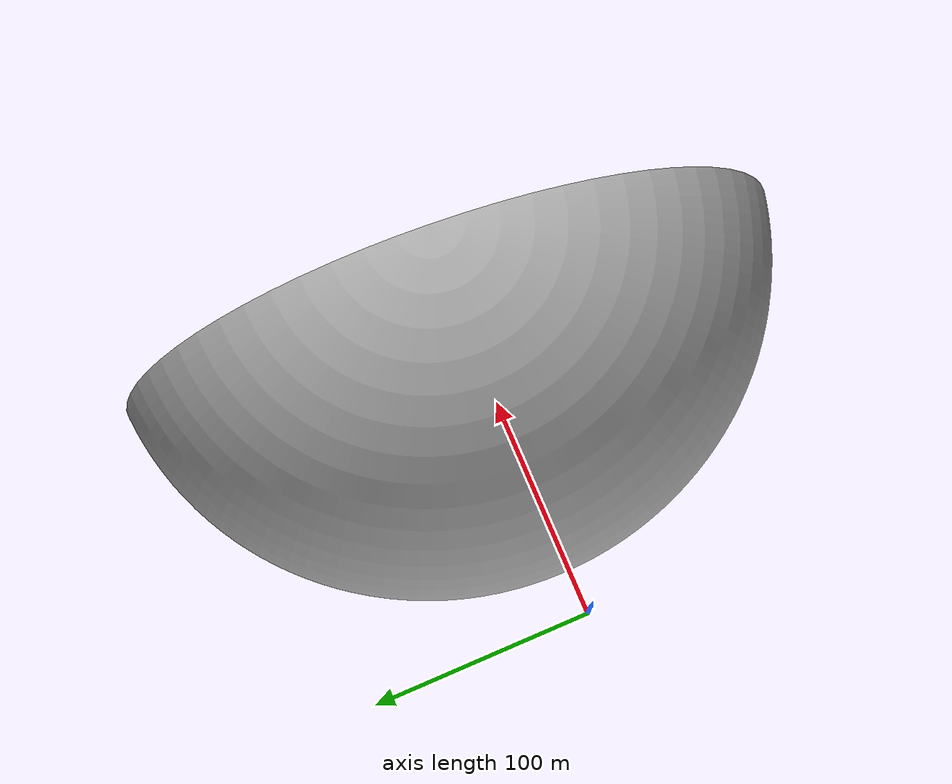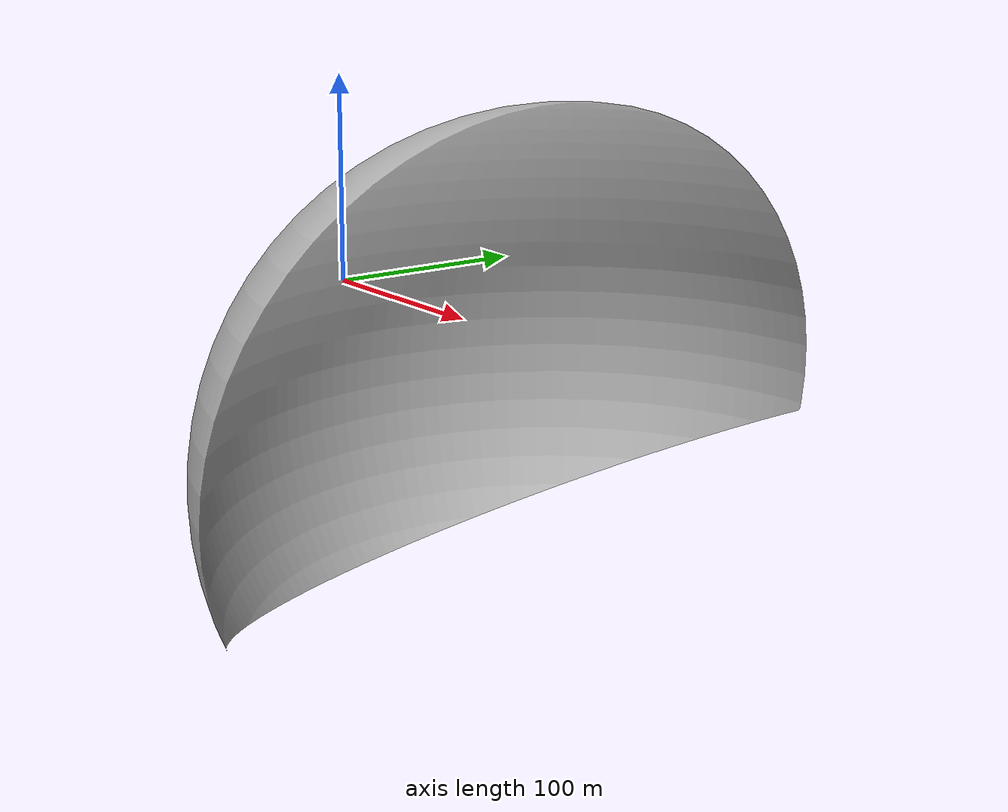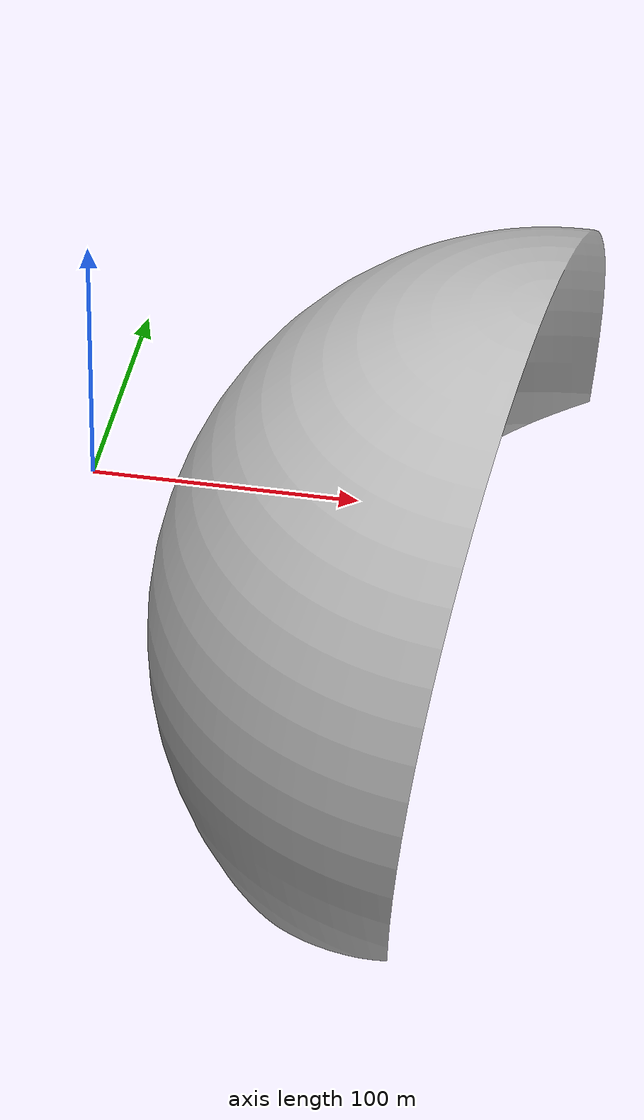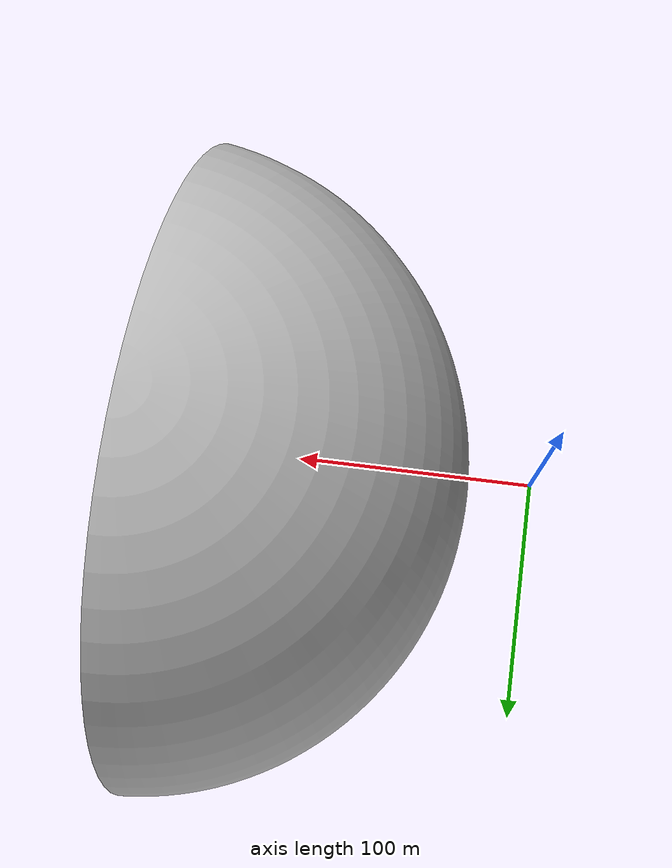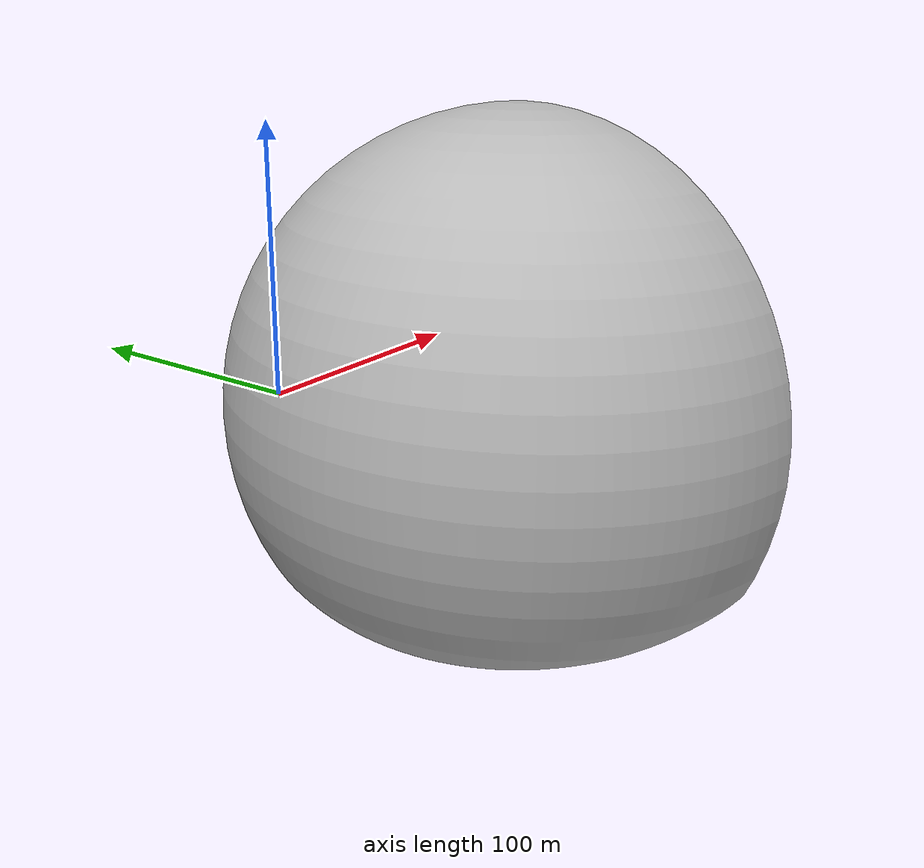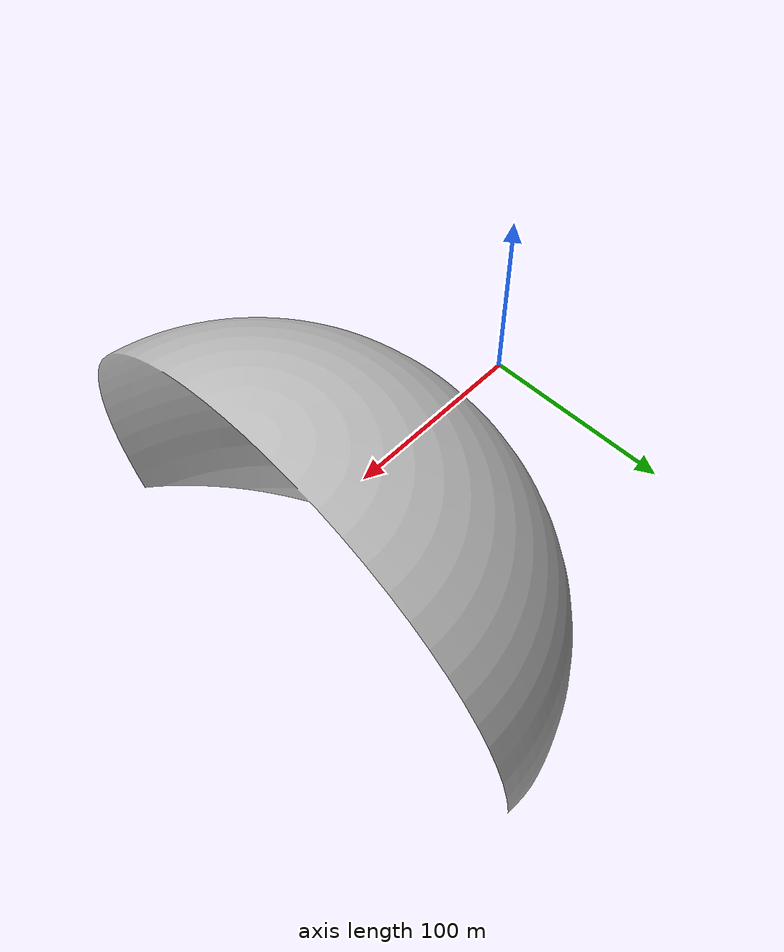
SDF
<sdf version="1.5">
  <world name="default">
    <gui fullscreen="0">
      <plugin filename="GzScene3D" name="3D View">
        <ignition-gui>
          <title>3D View</title>
          <property type="bool" key="showTitleBar">true</property>
          <property type="string" key="state">docked</property>
        </ignition-gui>
        <engine>ogre2</engine>
        <scene>scene</scene>
        <background_color>0.0 0.0 0.0</background_color>
      </plugin>
    </gui>

    <light type="directional" name="sun">
      <cast_shadows>true</cast_shadows>
      <pose>0 -10 10 0 0 0</pose>
      <diffuse>0.8 0.8 0.8 1</diffuse>
      <specular>0.2 0.2 0.2 1</specular>
      <attenuation>
        <range>1000</range>
        <constant>0.9</constant>
        <linear>0.01</linear>
        <quadratic>0.001</quadratic>
      </attenuation>
      <direction>10 10 -0.9</direction>
    </light>
    <gravity>0 0 0</gravity>

    <model name="earth">
        <pose>170 0 -50 0 0 -1.5708</pose>
        <static>1</static>
        <link name='link'>
          <inertial>
            <mass>0.25</mass>
            <inertia>
              <ixx>1</ixx>
              <ixy>0.000</ixy>
              <ixz>0.000</ixz>
              <iyy>1</iyy>
              <iyz>0.000</iyz>
              <izz>1</izz>
            </inertia>
          </inertial>
          <visual name='visual'>
            <geometry>
              <mesh>
                <uri>model://canadarm/meshes/earth.dae</uri>
                <scale>3 3 3</scale>
              </mesh>
            </geometry>
          </visual>
          <velocity_decay>
            <linear>0.000000</linear>
            <angular>0.000000</angular>
          </velocity_decay>
          <self_collide>0</self_collide>
          <kinematic>0</kinematic>
          <gravity>0</gravity>
        </link>
    </model>

  </world>
</sdf>
